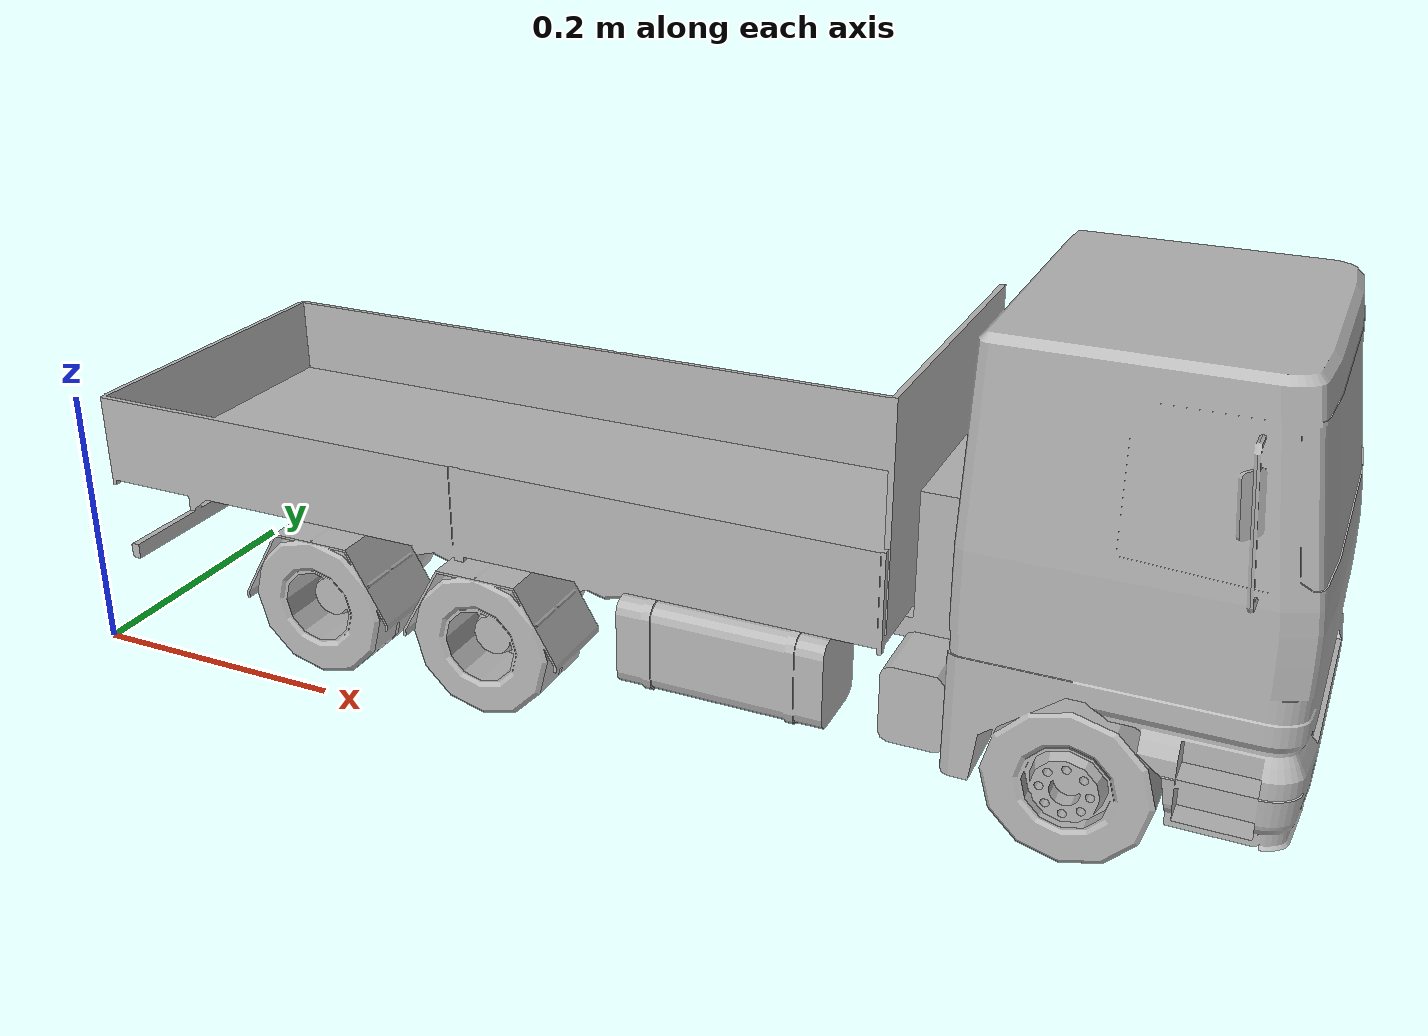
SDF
<?xml version="1.0" ?>
<sdf version="1.6">
  <model name="truck">
    <static>true</static>  <!-- Keep the arrow fixed in place -->

    <!-- Position the arrow in front of the robot -->
    <pose>0 0 0 0 0 0</pose>  <!-- Adjust as needed -->

    <link name="arrow_link">
      <!-- Visual Representation -->
      <visual name="arrow_visual">
        <geometry>
          <mesh>
            <uri>file:///home/mocha1410/.gazebo/models/truck/meshes/truck.stl</uri>
            <scale>0.005 0.005 0.005</scale>  <!-- Adjust size -->
          </mesh>
        </geometry>
      </visual>

      <!-- Collision -->
      <collision name="truck_collision">
        <geometry>
          <mesh>
            <uri>file:///home/mocha1410/.gazebo/models/truck/meshes/truck.stl</uri>
            <scale>0.005 0.005 0.005</scale>
          </mesh>
        </geometry>
      </collision>
    </link>
  </model>
</sdf>
